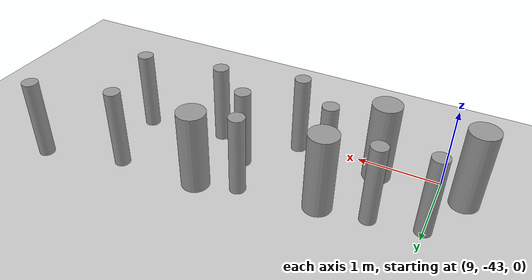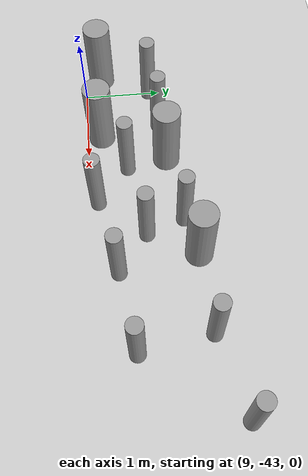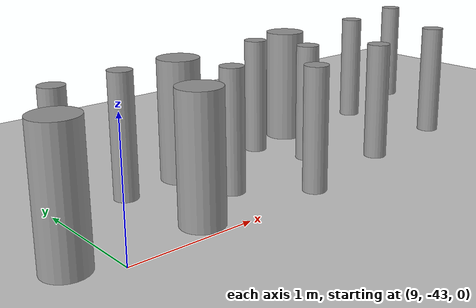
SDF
<sdf version="1.6">
 <world name="default">
  <model name="ground_plane">
   <static>1</static>
   <link name="link">
    <collision name="collision">
     <geometry><plane><normal>0 0 1</normal><size>100 100</size></plane></geometry>
     <surface><friction><ode><mu>100</mu><mu2>50</mu2></ode></friction></surface>
    </collision>
    <visual name="visual">
     <cast_shadows>0</cast_shadows>
     <geometry><plane><normal>0 0 1</normal><size>100 100</size></plane></geometry>
     <material>
      <script><uri>file://media/materials/scripts/gazebo.material</uri><name>Gazebo/Grey</name></script>
     </material>
    </visual>
   </link>
  </model>
  <model name="cyl_wall_clone_clone_1_clone_1_clone_clone_1_clone_0">
   <link name="link_0">
    <pose>-2.73893 -0.366465 0 0 -0 0</pose>
    <inertial>
     <mass>0.0374993</mass>
     <inertia>
      <ixx>0.00321281</ixx>
      <ixy>0</ixy>
      <ixz>0</ixz>
      <iyy>0.00321281</iyy>
      <iyz>0</iyz>
      <izz>0.000175774</izz>
     </inertia>
    </inertial>
    <visual name="visual">
     <geometry><cylinder><radius>0.0968661</radius><length>1</length></cylinder></geometry>
     <material>
      <lighting>1</lighting>
      <script><uri>file://media/materials/scripts/gazebo.material</uri><name>Gazebo/Grey</name></script>
      <ambient>0.3 0.3 0.3 1</ambient>
      <diffuse>0.7 0.7 0.7 1</diffuse>
      <specular>0.01 0.01 0.01 1</specular>
      <emissive>0 0 0 1</emissive>
     </material>
    </visual>
    <collision name="collision">
     <geometry><cylinder><radius>0.096866</radius><length>1</length></cylinder></geometry>
     <surface>
      <friction>
       <ode><mu>1</mu><mu2>1</mu2><fdir1>0 0 0</fdir1><slip1>0</slip1><slip2>0</slip2></ode>
       <torsional>
        <coefficient>1</coefficient>
        <patch_radius>0</patch_radius>
        <surface_radius>0</surface_radius>
        <use_patch_radius>1</use_patch_radius>
        <ode><slip>0</slip></ode>
       </torsional>
      </friction>
      <bounce><restitution_coefficient>0</restitution_coefficient><threshold>1e+06</threshold></bounce>
      <contact>
       <collide_without_contact>0</collide_without_contact>
       <collide_without_contact_bitmask>1</collide_without_contact_bitmask>
       <collide_bitmask>1</collide_bitmask>
       <ode>
        <soft_cfm>0</soft_cfm>
        <soft_erp>0.2</soft_erp>
        <kp>1e+13</kp>
        <kd>1</kd>
        <max_vel>0.01</max_vel>
        <min_depth>0</min_depth>
       </ode>
       <bullet>
        <split_impulse>1</split_impulse>
        <split_impulse_penetration_threshold>-0.01</split_impulse_penetration_threshold>
        <soft_cfm>0</soft_cfm>
        <soft_erp>0.2</soft_erp>
        <kp>1e+13</kp>
        <kd>1</kd>
       </bullet>
      </contact>
     </surface>
    </collision>
   </link>
   <link name="link_0_clone">
    <pose>-1.73893 0.61877 0 0 -0 0</pose>
    <inertial>
     <mass>0.0374993</mass>
     <inertia>
      <ixx>0.00321281</ixx>
      <ixy>0</ixy>
      <ixz>0</ixz>
      <iyy>0.00321281</iyy>
      <iyz>0</iyz>
      <izz>0.000175774</izz>
     </inertia>
    </inertial>
    <visual name="visual">
     <geometry><cylinder><radius>0.0968661</radius><length>1</length></cylinder></geometry>
     <material>
      <lighting>1</lighting>
      <script><uri>file://media/materials/scripts/gazebo.material</uri><name>Gazebo/Grey</name></script>
      <ambient>0.3 0.3 0.3 1</ambient>
      <diffuse>0.7 0.7 0.7 1</diffuse>
      <specular>0.01 0.01 0.01 1</specular>
      <emissive>0 0 0 1</emissive>
      <shader type="pixel"/>
     </material>
    </visual>
    <collision name="collision">
     <geometry><cylinder><radius>0.096866</radius><length>1</length></cylinder></geometry>
     <surface>
      <friction>
       <ode><mu>1</mu><mu2>1</mu2><fdir1>0 0 0</fdir1><slip1>0</slip1><slip2>0</slip2></ode>
       <torsional>
        <coefficient>1</coefficient>
        <patch_radius>0</patch_radius>
        <surface_radius>0</surface_radius>
        <use_patch_radius>1</use_patch_radius>
        <ode><slip>0</slip></ode>
       </torsional>
      </friction>
      <bounce><restitution_coefficient>0</restitution_coefficient><threshold>1e+06</threshold></bounce>
      <contact>
       <collide_without_contact>0</collide_without_contact>
       <collide_without_contact_bitmask>1</collide_without_contact_bitmask>
       <collide_bitmask>1</collide_bitmask>
       <ode>
        <soft_cfm>0</soft_cfm>
        <soft_erp>0.2</soft_erp>
        <kp>1e+13</kp>
        <kd>1</kd>
        <max_vel>0.01</max_vel>
        <min_depth>0</min_depth>
       </ode>
       <bullet>
        <split_impulse>1</split_impulse>
        <split_impulse_penetration_threshold>-0.01</split_impulse_penetration_threshold>
        <soft_cfm>0</soft_cfm>
        <soft_erp>0.2</soft_erp>
        <kp>1e+13</kp>
        <kd>1</kd>
       </bullet>
      </contact>
     </surface>
    </collision>
   </link>
   <link name="link_0_clone_clone">
    <pose>-0.327073 0.143919 0 0 -0 0</pose>
    <inertial>
     <mass>0.0374993</mass>
     <inertia>
      <ixx>0.00321281</ixx>
      <ixy>0</ixy>
      <ixz>0</ixz>
      <iyy>0.00321281</iyy>
      <iyz>0</iyz>
      <izz>0.000175774</izz>
     </inertia>
    </inertial>
    <visual name="visual">
     <geometry><cylinder><radius>0.0968661</radius><length>1</length></cylinder></geometry>
     <material>
      <lighting>1</lighting>
      <script><uri>file://media/materials/scripts/gazebo.material</uri><name>Gazebo/Grey</name></script>
      <ambient>0.3 0.3 0.3 1</ambient>
      <diffuse>0.7 0.7 0.7 1</diffuse>
      <specular>0.01 0.01 0.01 1</specular>
      <emissive>0 0 0 1</emissive>
      <shader type="pixel"/>
     </material>
    </visual>
    <collision name="collision">
     <geometry><cylinder><radius>0.096866</radius><length>1</length></cylinder></geometry>
     <surface>
      <friction>
       <ode><mu>1</mu><mu2>1</mu2><fdir1>0 0 0</fdir1><slip1>0</slip1><slip2>0</slip2></ode>
       <torsional>
        <coefficient>1</coefficient>
        <patch_radius>0</patch_radius>
        <surface_radius>0</surface_radius>
        <use_patch_radius>1</use_patch_radius>
        <ode><slip>0</slip></ode>
       </torsional>
      </friction>
      <bounce><restitution_coefficient>0</restitution_coefficient><threshold>1e+06</threshold></bounce>
      <contact>
       <collide_without_contact>0</collide_without_contact>
       <collide_without_contact_bitmask>1</collide_without_contact_bitmask>
       <collide_bitmask>1</collide_bitmask>
       <ode>
        <soft_cfm>0</soft_cfm>
        <soft_erp>0.2</soft_erp>
        <kp>1e+13</kp>
        <kd>1</kd>
        <max_vel>0.01</max_vel>
        <min_depth>0</min_depth>
       </ode>
       <bullet>
        <split_impulse>1</split_impulse>
        <split_impulse_penetration_threshold>-0.01</split_impulse_penetration_threshold>
        <soft_cfm>0</soft_cfm>
        <soft_erp>0.2</soft_erp>
        <kp>1e+13</kp>
        <kd>1</kd>
       </bullet>
      </contact>
     </surface>
    </collision>
   </link>
   <link name="link_0_clone_clone_0">
    <pose>1.26107 -0.419359 0 0 -0 0</pose>
    <inertial>
     <mass>0.0374993</mass>
     <inertia>
      <ixx>0.00321281</ixx>
      <ixy>0</ixy>
      <ixz>0</ixz>
      <iyy>0.00321281</iyy>
      <iyz>0</iyz>
      <izz>0.000175774</izz>
     </inertia>
    </inertial>
    <visual name="visual">
     <geometry><cylinder><radius>0.0968661</radius><length>1</length></cylinder></geometry>
     <material>
      <lighting>1</lighting>
      <script><uri>file://media/materials/scripts/gazebo.material</uri><name>Gazebo/Grey</name></script>
      <ambient>0.3 0.3 0.3 1</ambient>
      <diffuse>0.7 0.7 0.7 1</diffuse>
      <specular>0.01 0.01 0.01 1</specular>
      <emissive>0 0 0 1</emissive>
      <shader type="pixel"/>
     </material>
    </visual>
    <collision name="collision">
     <geometry><cylinder><radius>0.096866</radius><length>1</length></cylinder></geometry>
     <surface>
      <friction>
       <ode><mu>1</mu><mu2>1</mu2><fdir1>0 0 0</fdir1><slip1>0</slip1><slip2>0</slip2></ode>
       <torsional>
        <coefficient>1</coefficient>
        <patch_radius>0</patch_radius>
        <surface_radius>0</surface_radius>
        <use_patch_radius>1</use_patch_radius>
        <ode><slip>0</slip></ode>
       </torsional>
      </friction>
      <bounce><restitution_coefficient>0</restitution_coefficient><threshold>1e+06</threshold></bounce>
      <contact>
       <collide_without_contact>0</collide_without_contact>
       <collide_without_contact_bitmask>1</collide_without_contact_bitmask>
       <collide_bitmask>1</collide_bitmask>
       <ode>
        <soft_cfm>0</soft_cfm>
        <soft_erp>0.2</soft_erp>
        <kp>1e+13</kp>
        <kd>1</kd>
        <max_vel>0.01</max_vel>
        <min_depth>0</min_depth>
       </ode>
       <bullet>
        <split_impulse>1</split_impulse>
        <split_impulse_penetration_threshold>-0.01</split_impulse_penetration_threshold>
        <soft_cfm>0</soft_cfm>
        <soft_erp>0.2</soft_erp>
        <kp>1e+13</kp>
        <kd>1</kd>
       </bullet>
      </contact>
     </surface>
    </collision>
   </link>
   <link name="link_0_clone_clone_1">
    <pose>-1.73893 -0.277168 0 0 -0 0</pose>
    <inertial>
     <mass>0.0374993</mass>
     <inertia>
      <ixx>0.00321281</ixx>
      <ixy>0</ixy>
      <ixz>0</ixz>
      <iyy>0.00321281</iyy>
      <iyz>0</iyz>
      <izz>0.000175774</izz>
     </inertia>
    </inertial>
    <visual name="visual">
     <geometry><cylinder><radius>0.0968661</radius><length>1</length></cylinder></geometry>
     <material>
      <lighting>1</lighting>
      <script><uri>file://media/materials/scripts/gazebo.material</uri><name>Gazebo/Grey</name></script>
      <ambient>0.3 0.3 0.3 1</ambient>
      <diffuse>0.7 0.7 0.7 1</diffuse>
      <specular>0.01 0.01 0.01 1</specular>
      <emissive>0 0 0 1</emissive>
      <shader type="pixel"/>
     </material>
    </visual>
    <collision name="collision">
     <geometry><cylinder><radius>0.096866</radius><length>1</length></cylinder></geometry>
     <surface>
      <friction>
       <ode><mu>1</mu><mu2>1</mu2><fdir1>0 0 0</fdir1><slip1>0</slip1><slip2>0</slip2></ode>
       <torsional>
        <coefficient>1</coefficient>
        <patch_radius>0</patch_radius>
        <surface_radius>0</surface_radius>
        <use_patch_radius>1</use_patch_radius>
        <ode><slip>0</slip></ode>
       </torsional>
      </friction>
      <bounce><restitution_coefficient>0</restitution_coefficient><threshold>1e+06</threshold></bounce>
      <contact>
       <collide_without_contact>0</collide_without_contact>
       <collide_without_contact_bitmask>1</collide_without_contact_bitmask>
       <collide_bitmask>1</collide_bitmask>
       <ode>
        <soft_cfm>0</soft_cfm>
        <soft_erp>0.2</soft_erp>
        <kp>1e+13</kp>
        <kd>1</kd>
        <max_vel>0.01</max_vel>
        <min_depth>0</min_depth>
       </ode>
       <bullet>
        <split_impulse>1</split_impulse>
        <split_impulse_penetration_threshold>-0.01</split_impulse_penetration_threshold>
        <soft_cfm>0</soft_cfm>
        <soft_erp>0.2</soft_erp>
        <kp>1e+13</kp>
        <kd>1</kd>
       </bullet>
      </contact>
     </surface>
    </collision>
   </link>
   <link name="link_0_clone_clone_2">
    <pose>-0.738934 0.593961 0 0 -0 0</pose>
    <inertial>
     <mass>0.0374993</mass>
     <inertia>
      <ixx>0.00321281</ixx>
      <ixy>0</ixy>
      <ixz>0</ixz>
      <iyy>0.00321281</iyy>
      <iyz>0</iyz>
      <izz>0.000175774</izz>
     </inertia>
    </inertial>
    <visual name="visual">
     <geometry><cylinder><radius>0.0968661</radius><length>1</length></cylinder></geometry>
     <material>
      <lighting>1</lighting>
      <script><uri>file://media/materials/scripts/gazebo.material</uri><name>Gazebo/Grey</name></script>
      <ambient>0.3 0.3 0.3 1</ambient>
      <diffuse>0.7 0.7 0.7 1</diffuse>
      <specular>0.01 0.01 0.01 1</specular>
      <emissive>0 0 0 1</emissive>
      <shader type="pixel"/>
     </material>
    </visual>
    <collision name="collision">
     <geometry><cylinder><radius>0.096866</radius><length>1</length></cylinder></geometry>
     <surface>
      <friction>
       <ode><mu>1</mu><mu2>1</mu2><fdir1>0 0 0</fdir1><slip1>0</slip1><slip2>0</slip2></ode>
       <torsional>
        <coefficient>1</coefficient>
        <patch_radius>0</patch_radius>
        <surface_radius>0</surface_radius>
        <use_patch_radius>1</use_patch_radius>
        <ode><slip>0</slip></ode>
       </torsional>
      </friction>
      <bounce><restitution_coefficient>0</restitution_coefficient><threshold>1e+06</threshold></bounce>
      <contact>
       <collide_without_contact>0</collide_without_contact>
       <collide_without_contact_bitmask>1</collide_without_contact_bitmask>
       <collide_bitmask>1</collide_bitmask>
       <ode>
        <soft_cfm>0</soft_cfm>
        <soft_erp>0.2</soft_erp>
        <kp>1e+13</kp>
        <kd>1</kd>
        <max_vel>0.01</max_vel>
        <min_depth>0</min_depth>
       </ode>
       <bullet>
        <split_impulse>1</split_impulse>
        <split_impulse_penetration_threshold>-0.01</split_impulse_penetration_threshold>
        <soft_cfm>0</soft_cfm>
        <soft_erp>0.2</soft_erp>
        <kp>1e+13</kp>
        <kd>1</kd>
       </bullet>
      </contact>
     </surface>
    </collision>
   </link>
   <link name="link_0_clone_clone_3">
    <pose>0.261066 0.624849 0 0 -0 0</pose>
    <inertial>
     <mass>0.0374993</mass>
     <inertia>
      <ixx>0.00321281</ixx>
      <ixy>0</ixy>
      <ixz>0</ixz>
      <iyy>0.00321281</iyy>
      <iyz>0</iyz>
      <izz>0.000175774</izz>
     </inertia>
    </inertial>
    <visual name="visual">
     <geometry><cylinder><radius>0.0968661</radius><length>1</length></cylinder></geometry>
     <material>
      <lighting>1</lighting>
      <script><uri>file://media/materials/scripts/gazebo.material</uri><name>Gazebo/Grey</name></script>
      <ambient>0.3 0.3 0.3 1</ambient>
      <diffuse>0.7 0.7 0.7 1</diffuse>
      <specular>0.01 0.01 0.01 1</specular>
      <emissive>0 0 0 1</emissive>
      <shader type="pixel"/>
     </material>
    </visual>
    <collision name="collision">
     <geometry><cylinder><radius>0.096866</radius><length>1</length></cylinder></geometry>
     <surface>
      <friction>
       <ode><mu>1</mu><mu2>1</mu2><fdir1>0 0 0</fdir1><slip1>0</slip1><slip2>0</slip2></ode>
       <torsional>
        <coefficient>1</coefficient>
        <patch_radius>0</patch_radius>
        <surface_radius>0</surface_radius>
        <use_patch_radius>1</use_patch_radius>
        <ode><slip>0</slip></ode>
       </torsional>
      </friction>
      <bounce><restitution_coefficient>0</restitution_coefficient><threshold>1e+06</threshold></bounce>
      <contact>
       <collide_without_contact>0</collide_without_contact>
       <collide_without_contact_bitmask>1</collide_without_contact_bitmask>
       <collide_bitmask>1</collide_bitmask>
       <ode>
        <soft_cfm>0</soft_cfm>
        <soft_erp>0.2</soft_erp>
        <kp>1e+13</kp>
        <kd>1</kd>
        <max_vel>0.01</max_vel>
        <min_depth>0</min_depth>
       </ode>
       <bullet>
        <split_impulse>1</split_impulse>
        <split_impulse_penetration_threshold>-0.01</split_impulse_penetration_threshold>
        <soft_cfm>0</soft_cfm>
        <soft_erp>0.2</soft_erp>
        <kp>1e+13</kp>
        <kd>1</kd>
       </bullet>
      </contact>
     </surface>
    </collision>
   </link>
   <link name="link_0_clone_clone_4">
    <pose>-0.239049 -0.353105 0 0 -0 0</pose>
    <inertial>
     <mass>0.0374993</mass>
     <inertia>
      <ixx>0.00321281</ixx>
      <ixy>0</ixy>
      <ixz>0</ixz>
      <iyy>0.00321281</iyy>
      <iyz>0</iyz>
      <izz>0.000175774</izz>
     </inertia>
    </inertial>
    <visual name="visual">
     <geometry><cylinder><radius>0.0968661</radius><length>1</length></cylinder></geometry>
     <material>
      <lighting>1</lighting>
      <script><uri>file://media/materials/scripts/gazebo.material</uri><name>Gazebo/Grey</name></script>
      <ambient>0.3 0.3 0.3 1</ambient>
      <diffuse>0.7 0.7 0.7 1</diffuse>
      <specular>0.01 0.01 0.01 1</specular>
      <emissive>0 0 0 1</emissive>
      <shader type="pixel"/>
     </material>
    </visual>
    <collision name="collision">
     <geometry><cylinder><radius>0.096866</radius><length>1</length></cylinder></geometry>
     <surface>
      <friction>
       <ode><mu>1</mu><mu2>1</mu2><fdir1>0 0 0</fdir1><slip1>0</slip1><slip2>0</slip2></ode>
       <torsional>
        <coefficient>1</coefficient>
        <patch_radius>0</patch_radius>
        <surface_radius>0</surface_radius>
        <use_patch_radius>1</use_patch_radius>
        <ode><slip>0</slip></ode>
       </torsional>
      </friction>
      <bounce><restitution_coefficient>0</restitution_coefficient><threshold>1e+06</threshold></bounce>
      <contact>
       <collide_without_contact>0</collide_without_contact>
       <collide_without_contact_bitmask>1</collide_without_contact_bitmask>
       <collide_bitmask>1</collide_bitmask>
       <ode>
        <soft_cfm>0</soft_cfm>
        <soft_erp>0.2</soft_erp>
        <kp>1e+13</kp>
        <kd>1</kd>
        <max_vel>0.01</max_vel>
        <min_depth>0</min_depth>
       </ode>
       <bullet>
        <split_impulse>1</split_impulse>
        <split_impulse_penetration_threshold>-0.01</split_impulse_penetration_threshold>
        <soft_cfm>0</soft_cfm>
        <soft_erp>0.2</soft_erp>
        <kp>1e+13</kp>
        <kd>1</kd>
       </bullet>
      </contact>
     </surface>
    </collision>
   </link>
   <link name="link_0_clone_clone_5">
    <pose>0.672792 0.143919 0 0 -0 0</pose>
    <inertial>
     <mass>0.0374993</mass>
     <inertia>
      <ixx>0.00321281</ixx>
      <ixy>0</ixy>
      <ixz>0</ixz>
      <iyy>0.00321281</iyy>
      <iyz>0</iyz>
      <izz>0.000175774</izz>
     </inertia>
    </inertial>
    <visual name="visual">
     <geometry><cylinder><radius>0.0968661</radius><length>1</length></cylinder></geometry>
     <material>
      <lighting>1</lighting>
      <script><uri>file://media/materials/scripts/gazebo.material</uri><name>Gazebo/Grey</name></script>
      <ambient>0.3 0.3 0.3 1</ambient>
      <diffuse>0.7 0.7 0.7 1</diffuse>
      <specular>0.01 0.01 0.01 1</specular>
      <emissive>0 0 0 1</emissive>
      <shader type="pixel"/>
     </material>
    </visual>
    <collision name="collision">
     <geometry><cylinder><radius>0.096866</radius><length>1</length></cylinder></geometry>
     <surface>
      <friction>
       <ode><mu>1</mu><mu2>1</mu2><fdir1>0 0 0</fdir1><slip1>0</slip1><slip2>0</slip2></ode>
       <torsional>
        <coefficient>1</coefficient>
        <patch_radius>0</patch_radius>
        <surface_radius>0</surface_radius>
        <use_patch_radius>1</use_patch_radius>
        <ode><slip>0</slip></ode>
       </torsional>
      </friction>
      <bounce><restitution_coefficient>0</restitution_coefficient><threshold>1e+06</threshold></bounce>
      <contact>
       <collide_without_contact>0</collide_without_contact>
       <collide_without_contact_bitmask>1</collide_without_contact_bitmask>
       <collide_bitmask>1</collide_bitmask>
       <ode>
        <soft_cfm>0</soft_cfm>
        <soft_erp>0.2</soft_erp>
        <kp>1e+13</kp>
        <kd>1</kd>
        <max_vel>0.01</max_vel>
        <min_depth>0</min_depth>
       </ode>
       <bullet>
        <split_impulse>1</split_impulse>
        <split_impulse_penetration_threshold>-0.01</split_impulse_penetration_threshold>
        <soft_cfm>0</soft_cfm>
        <soft_erp>0.2</soft_erp>
        <kp>1e+13</kp>
        <kd>1</kd>
       </bullet>
      </contact>
     </surface>
    </collision>
   </link>
   <link name="link_0_clone_clone_6">
    <pose>1.84596 -0.433423 0 0 -0 0</pose>
    <inertial>
     <mass>0.0374993</mass>
     <inertia>
      <ixx>0.00321281</ixx>
      <ixy>0</ixy>
      <ixz>0</ixz>
      <iyy>0.00321281</iyy>
      <iyz>0</iyz>
      <izz>0.000175774</izz>
     </inertia>
    </inertial>
    <visual name="visual">
     <geometry><cylinder><radius>0.0968661</radius><length>1</length></cylinder></geometry>
     <material>
      <lighting>1</lighting>
      <script><uri>file://media/materials/scripts/gazebo.material</uri><name>Gazebo/Grey</name></script>
      <ambient>0.3 0.3 0.3 1</ambient>
      <diffuse>0.7 0.7 0.7 1</diffuse>
      <specular>0.01 0.01 0.01 1</specular>
      <emissive>0 0 0 1</emissive>
      <shader type="pixel"/>
     </material>
    </visual>
    <collision name="collision">
     <geometry><cylinder><radius>0.096866</radius><length>1</length></cylinder></geometry>
     <surface>
      <friction>
       <ode><mu>1</mu><mu2>1</mu2><fdir1>0 0 0</fdir1><slip1>0</slip1><slip2>0</slip2></ode>
       <torsional>
        <coefficient>1</coefficient>
        <patch_radius>0</patch_radius>
        <surface_radius>0</surface_radius>
        <use_patch_radius>1</use_patch_radius>
        <ode><slip>0</slip></ode>
       </torsional>
      </friction>
      <bounce><restitution_coefficient>0</restitution_coefficient><threshold>1e+06</threshold></bounce>
      <contact>
       <collide_without_contact>0</collide_without_contact>
       <collide_without_contact_bitmask>1</collide_without_contact_bitmask>
       <collide_bitmask>1</collide_bitmask>
       <ode>
        <soft_cfm>0</soft_cfm>
        <soft_erp>0.2</soft_erp>
        <kp>1e+13</kp>
        <kd>1</kd>
        <max_vel>0.01</max_vel>
        <min_depth>0</min_depth>
       </ode>
       <bullet>
        <split_impulse>1</split_impulse>
        <split_impulse_penetration_threshold>-0.01</split_impulse_penetration_threshold>
        <soft_cfm>0</soft_cfm>
        <soft_erp>0.2</soft_erp>
        <kp>1e+13</kp>
        <kd>1</kd>
       </bullet>
      </contact>
     </surface>
    </collision>
   </link>
   <link name="link_1">
    <pose>-0.738934 -0.397931 0 0 -0 0</pose>
    <inertial>
     <mass>0.117398</mass>
     <inertia>
      <ixx>0.0106445</ixx>
      <ixy>0</ixy>
      <ixz>0</ixz>
      <iyy>0.0106445</iyy>
      <iyz>0</iyz>
      <izz>0.00172278</izz>
     </inertia>
    </inertial>
    <visual name="visual">
     <geometry><cylinder><radius>0.171317</radius><length>1</length></cylinder></geometry>
     <material>
      <lighting>1</lighting>
      <script><uri>file://media/materials/scripts/gazebo.material</uri><name>Gazebo/Grey</name></script>
      <ambient>0.3 0.3 0.3 1</ambient>
      <diffuse>0.7 0.7 0.7 1</diffuse>
      <specular>0.01 0.01 0.01 1</specular>
      <emissive>0 0 0 1</emissive>
     </material>
    </visual>
    <collision name="collision">
     <geometry><cylinder><radius>0.171317</radius><length>1</length></cylinder></geometry>
     <surface>
      <friction>
       <ode><mu>1</mu><mu2>1</mu2><fdir1>0 0 0</fdir1><slip1>0</slip1><slip2>0</slip2></ode>
       <torsional>
        <coefficient>1</coefficient>
        <patch_radius>0</patch_radius>
        <surface_radius>0</surface_radius>
        <use_patch_radius>1</use_patch_radius>
        <ode><slip>0</slip></ode>
       </torsional>
      </friction>
      <bounce><restitution_coefficient>0</restitution_coefficient><threshold>1e+06</threshold></bounce>
      <contact>
       <collide_without_contact>0</collide_without_contact>
       <collide_without_contact_bitmask>1</collide_without_contact_bitmask>
       <collide_bitmask>1</collide_bitmask>
       <ode>
        <soft_cfm>0</soft_cfm>
        <soft_erp>0.2</soft_erp>
        <kp>1e+13</kp>
        <kd>1</kd>
        <max_vel>0.01</max_vel>
        <min_depth>0</min_depth>
       </ode>
       <bullet>
        <split_impulse>1</split_impulse>
        <split_impulse_penetration_threshold>-0.01</split_impulse_penetration_threshold>
        <soft_cfm>0</soft_cfm>
        <soft_erp>0.2</soft_erp>
        <kp>1e+13</kp>
        <kd>1</kd>
       </bullet>
      </contact>
     </surface>
    </collision>
   </link>
   <link name="link_1_clone">
    <pose>0.697784 -0.380861 0 0 -0 0</pose>
    <inertial>
     <mass>0.117398</mass>
     <inertia>
      <ixx>0.0106445</ixx>
      <ixy>0</ixy>
      <ixz>0</ixz>
      <iyy>0.0106445</iyy>
      <iyz>0</iyz>
      <izz>0.00172278</izz>
     </inertia>
    </inertial>
    <visual name="visual">
     <geometry><cylinder><radius>0.171317</radius><length>1</length></cylinder></geometry>
     <material>
      <lighting>1</lighting>
      <script><uri>file://media/materials/scripts/gazebo.material</uri><name>Gazebo/Grey</name></script>
      <ambient>0.3 0.3 0.3 1</ambient>
      <diffuse>0.7 0.7 0.7 1</diffuse>
      <specular>0.01 0.01 0.01 1</specular>
      <emissive>0 0 0 1</emissive>
      <shader type="pixel"/>
     </material>
    </visual>
    <collision name="collision">
     <geometry><cylinder><radius>0.171317</radius><length>1</length></cylinder></geometry>
     <surface>
      <friction>
       <ode><mu>1</mu><mu2>1</mu2><fdir1>0 0 0</fdir1><slip1>0</slip1><slip2>0</slip2></ode>
       <torsional>
        <coefficient>1</coefficient>
        <patch_radius>0</patch_radius>
        <surface_radius>0</surface_radius>
        <use_patch_radius>1</use_patch_radius>
        <ode><slip>0</slip></ode>
       </torsional>
      </friction>
      <bounce><restitution_coefficient>0</restitution_coefficient><threshold>1e+06</threshold></bounce>
      <contact>
       <collide_without_contact>0</collide_without_contact>
       <collide_without_contact_bitmask>1</collide_without_contact_bitmask>
       <collide_bitmask>1</collide_bitmask>
       <ode>
        <soft_cfm>0</soft_cfm>
        <soft_erp>0.2</soft_erp>
        <kp>1e+13</kp>
        <kd>1</kd>
        <max_vel>0.01</max_vel>
        <min_depth>0</min_depth>
       </ode>
       <bullet>
        <split_impulse>1</split_impulse>
        <split_impulse_penetration_threshold>-0.01</split_impulse_penetration_threshold>
        <soft_cfm>0</soft_cfm>
        <soft_erp>0.2</soft_erp>
        <kp>1e+13</kp>
        <kd>1</kd>
       </bullet>
      </contact>
     </surface>
    </collision>
   </link>
   <link name="link_1_clone_0">
    <pose>1.26107 0.358974 0 0 -0 0</pose>
    <inertial>
     <mass>0.117398</mass>
     <inertia>
      <ixx>0.0106445</ixx>
      <ixy>0</ixy>
      <ixz>0</ixz>
      <iyy>0.0106445</iyy>
      <iyz>0</iyz>
      <izz>0.00172278</izz>
     </inertia>
    </inertial>
    <visual name="visual">
     <geometry><cylinder><radius>0.171317</radius><length>1</length></cylinder></geometry>
     <material>
      <lighting>1</lighting>
      <script><uri>file://media/materials/scripts/gazebo.material</uri><name>Gazebo/Grey</name></script>
      <ambient>0.3 0.3 0.3 1</ambient>
      <diffuse>0.7 0.7 0.7 1</diffuse>
      <specular>0.01 0.01 0.01 1</specular>
      <emissive>0 0 0 1</emissive>
      <shader type="pixel"/>
     </material>
    </visual>
    <collision name="collision">
     <geometry><cylinder><radius>0.171317</radius><length>1</length></cylinder></geometry>
     <surface>
      <friction>
       <ode><mu>1</mu><mu2>1</mu2><fdir1>0 0 0</fdir1><slip1>0</slip1><slip2>0</slip2></ode>
       <torsional>
        <coefficient>1</coefficient>
        <patch_radius>0</patch_radius>
        <surface_radius>0</surface_radius>
        <use_patch_radius>1</use_patch_radius>
        <ode><slip>0</slip></ode>
       </torsional>
      </friction>
      <bounce><restitution_coefficient>0</restitution_coefficient><threshold>1e+06</threshold></bounce>
      <contact>
       <collide_without_contact>0</collide_without_contact>
       <collide_without_contact_bitmask>1</collide_without_contact_bitmask>
       <collide_bitmask>1</collide_bitmask>
       <ode>
        <soft_cfm>0</soft_cfm>
        <soft_erp>0.2</soft_erp>
        <kp>1e+13</kp>
        <kd>1</kd>
        <max_vel>0.01</max_vel>
        <min_depth>0</min_depth>
       </ode>
       <bullet>
        <split_impulse>1</split_impulse>
        <split_impulse_penetration_threshold>-0.01</split_impulse_penetration_threshold>
        <soft_cfm>0</soft_cfm>
        <soft_erp>0.2</soft_erp>
        <kp>1e+13</kp>
        <kd>1</kd>
       </bullet>
      </contact>
     </surface>
    </collision>
   </link>
   <link name="link_1_clone_1">
    <pose>2.26107 0.143919 0 0 -0 0</pose>
    <inertial>
     <mass>0.117398</mass>
     <inertia>
      <ixx>0.0106445</ixx>
      <ixy>0</ixy>
      <ixz>0</ixz>
      <iyy>0.0106445</iyy>
      <iyz>0</iyz>
      <izz>0.00172278</izz>
     </inertia>
    </inertial>
    <visual name="visual">
     <geometry><cylinder><radius>0.171317</radius><length>1</length></cylinder></geometry>
     <material>
      <lighting>1</lighting>
      <script><uri>file://media/materials/scripts/gazebo.material</uri><name>Gazebo/Grey</name></script>
      <ambient>0.3 0.3 0.3 1</ambient>
      <diffuse>0.7 0.7 0.7 1</diffuse>
      <specular>0.01 0.01 0.01 1</specular>
      <emissive>0 0 0 1</emissive>
      <shader type="pixel"/>
     </material>
    </visual>
    <collision name="collision">
     <geometry><cylinder><radius>0.171317</radius><length>1</length></cylinder></geometry>
     <surface>
      <friction>
       <ode><mu>1</mu><mu2>1</mu2><fdir1>0 0 0</fdir1><slip1>0</slip1><slip2>0</slip2></ode>
       <torsional>
        <coefficient>1</coefficient>
        <patch_radius>0</patch_radius>
        <surface_radius>0</surface_radius>
        <use_patch_radius>1</use_patch_radius>
        <ode><slip>0</slip></ode>
       </torsional>
      </friction>
      <bounce><restitution_coefficient>0</restitution_coefficient><threshold>1e+06</threshold></bounce>
      <contact>
       <collide_without_contact>0</collide_without_contact>
       <collide_without_contact_bitmask>1</collide_without_contact_bitmask>
       <collide_bitmask>1</collide_bitmask>
       <ode>
        <soft_cfm>0</soft_cfm>
        <soft_erp>0.2</soft_erp>
        <kp>1e+13</kp>
        <kd>1</kd>
        <max_vel>0.01</max_vel>
        <min_depth>0</min_depth>
       </ode>
       <bullet>
        <split_impulse>1</split_impulse>
        <split_impulse_penetration_threshold>-0.01</split_impulse_penetration_threshold>
        <soft_cfm>0</soft_cfm>
        <soft_erp>0.2</soft_erp>
        <kp>1e+13</kp>
        <kd>1</kd>
       </bullet>
      </contact>
     </surface>
    </collision>
   </link>
   <static>1</static>
   <pose>10.8991 -42.2308 0.5 0 0 -2.95907</pose>
  </model>
 </world>
</sdf>
